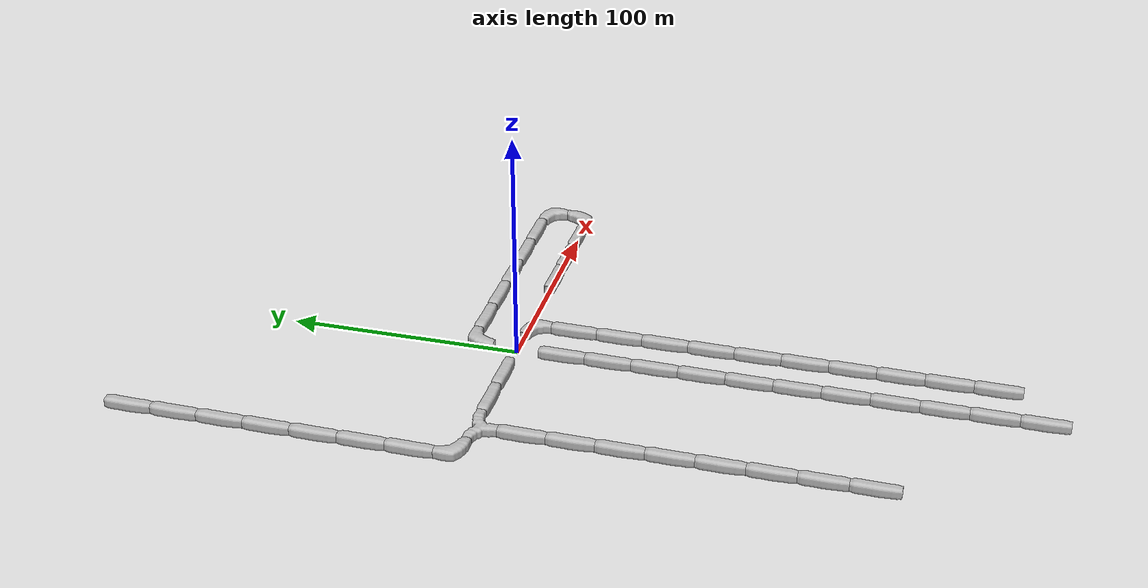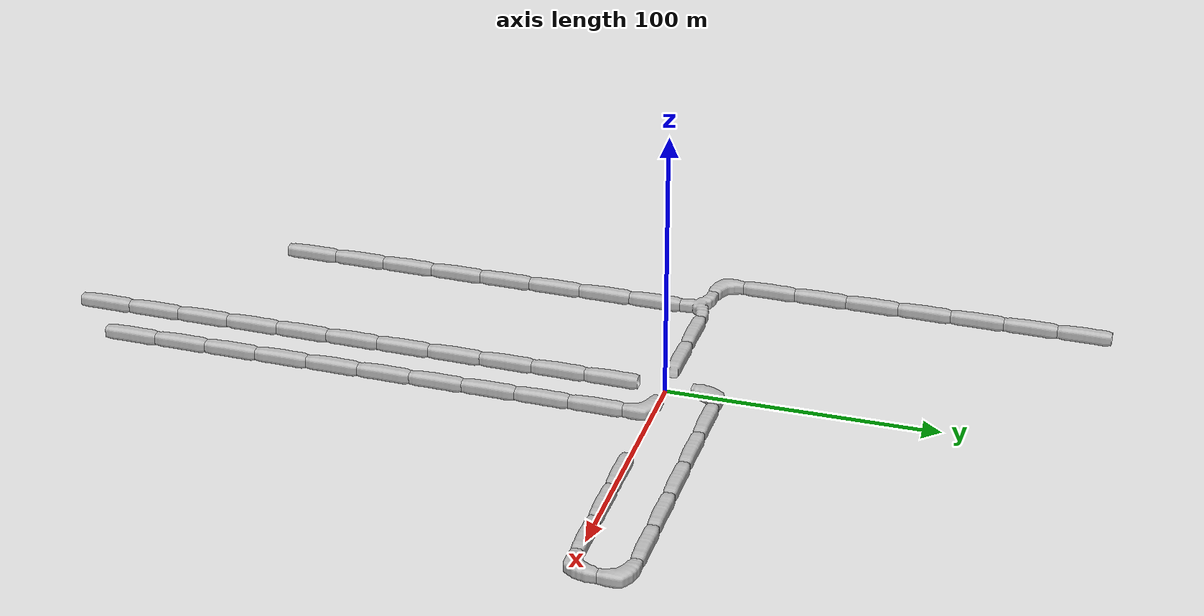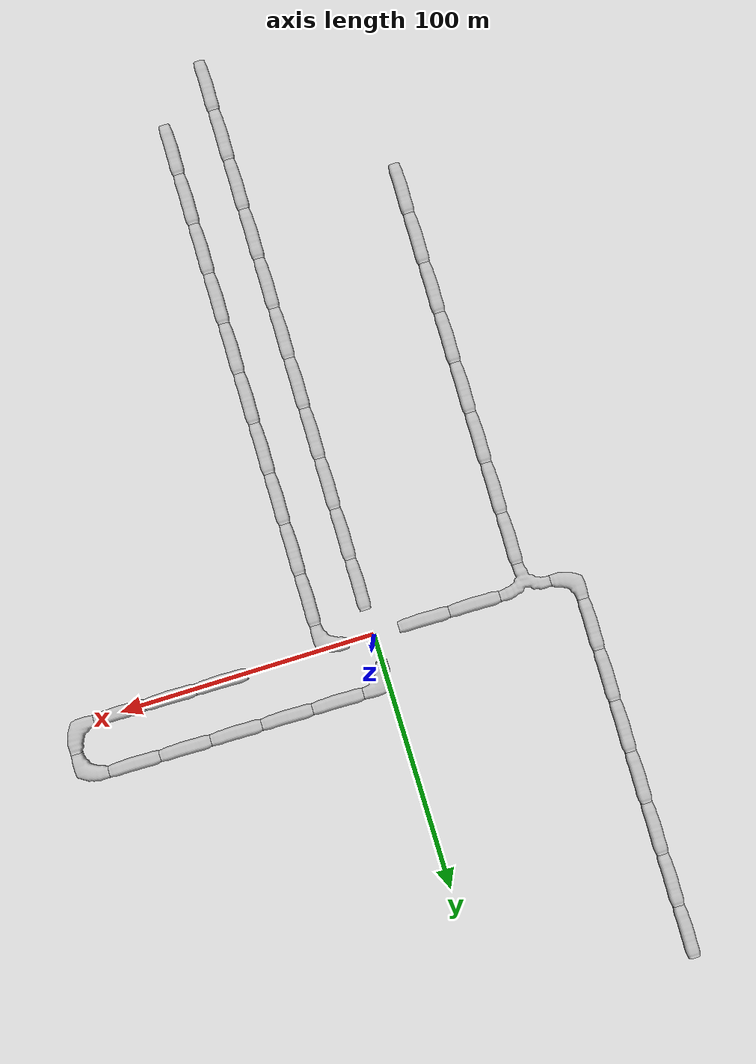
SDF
<sdf version="1.6">
 <world name="cave_1000_2">
  <include>
   <static>true</static>
   <name>cave_1_0</name>
   <pose>20 0 0 0 0 3.141592653589793</pose>
   <uri>model://cave_L_20m</uri>
  </include>
  <include>
   <static>true</static>
   <name>cave_1_-1</name>
   <pose>20 -20 0 0 0 0.0</pose>
   <uri>model://cave_straight_20m</uri>
  </include>
  <include>
   <static>true</static>
   <name>cave_1_-2</name>
   <pose>20 -40 0 0 0 0.0</pose>
   <uri>model://cave_straight_20m</uri>
  </include>
  <include>
   <static>true</static>
   <name>cave_1_-3</name>
   <pose>20 -60 0 0 0 0.0</pose>
   <uri>model://cave_straight_20m</uri>
  </include>
  <include>
   <static>true</static>
   <name>cave_1_-4</name>
   <pose>20 -80 0 0 0 0.0</pose>
   <uri>model://cave_straight_20m</uri>
  </include>
  <include>
   <static>true</static>
   <name>cave_1_-5</name>
   <pose>20 -100 0 0 0 0.0</pose>
   <uri>model://cave_straight_20m</uri>
  </include>
  <include>
   <static>true</static>
   <name>cave_1_-6</name>
   <pose>20 -120 0 0 0 0.0</pose>
   <uri>model://cave_straight_20m</uri>
  </include>
  <include>
   <static>true</static>
   <name>cave_1_-7</name>
   <pose>20 -140 0 0 0 0.0</pose>
   <uri>model://cave_straight_20m</uri>
  </include>
  <include>
   <static>true</static>
   <name>cave_1_-8</name>
   <pose>20 -160 0 0 0 0.0</pose>
   <uri>model://cave_straight_20m</uri>
  </include>
  <include>
   <static>true</static>
   <name>cave_1_-9</name>
   <pose>20 -180 0 0 0 0.0</pose>
   <uri>model://cave_straight_20m</uri>
  </include>
  <include>
   <static>true</static>
   <name>cave_1_-10</name>
   <pose>20 -200 0 0 0 0.0</pose>
   <uri>model://cave_straight_20m</uri>
  </include>
  <include>
   <static>true</static>
   <name>cave_0_-1</name>
   <pose>0 -20 0 0 0 0.0</pose>
   <uri>model://cave_straight_20m</uri>
  </include>
  <include>
   <static>true</static>
   <name>cave_0_-2</name>
   <pose>0 -40 0 0 0 0.0</pose>
   <uri>model://cave_straight_20m</uri>
  </include>
  <include>
   <static>true</static>
   <name>cave_0_-3</name>
   <pose>0 -60 0 0 0 0.0</pose>
   <uri>model://cave_straight_20m</uri>
  </include>
  <include>
   <static>true</static>
   <name>cave_0_-4</name>
   <pose>0 -80 0 0 0 0.0</pose>
   <uri>model://cave_straight_20m</uri>
  </include>
  <include>
   <static>true</static>
   <name>cave_0_-5</name>
   <pose>0 -100 0 0 0 0.0</pose>
   <uri>model://cave_straight_20m</uri>
  </include>
  <include>
   <static>true</static>
   <name>cave_0_-6</name>
   <pose>0 -120 0 0 0 0.0</pose>
   <uri>model://cave_straight_20m</uri>
  </include>
  <include>
   <static>true</static>
   <name>cave_0_-7</name>
   <pose>0 -140 0 0 0 0.0</pose>
   <uri>model://cave_straight_20m</uri>
  </include>
  <include>
   <static>true</static>
   <name>cave_0_-8</name>
   <pose>0 -160 0 0 0 0.0</pose>
   <uri>model://cave_straight_20m</uri>
  </include>
  <include>
   <static>true</static>
   <name>cave_0_-9</name>
   <pose>0 -180 0 0 0 0.0</pose>
   <uri>model://cave_straight_20m</uri>
  </include>
  <include>
   <static>true</static>
   <name>cave_0_-10</name>
   <pose>0 -200 0 0 0 0.0</pose>
   <uri>model://cave_straight_20m</uri>
  </include>
  <include>
   <static>true</static>
   <name>cave_0_-11</name>
   <pose>0 -220 0 0 0 0.0</pose>
   <uri>model://cave_straight_20m</uri>
  </include>
  <include>
   <static>true</static>
   <name>cave_-1_0</name>
   <pose>-20 0 0 0 0 1.5707963267948966</pose>
   <uri>model://cave_straight_20m</uri>
  </include>
  <include>
   <static>true</static>
   <name>cave_-2_0</name>
   <pose>-40 0 0 0 0 1.5707963267948966</pose>
   <uri>model://cave_straight_20m</uri>
  </include>
  <include>
   <static>true</static>
   <name>cave_-3_0</name>
   <pose>-60 0 0 0 0 3.141592653589793</pose>
   <uri>model://cave_3way_20m</uri>
  </include>
  <include>
   <static>true</static>
   <name>cave_-3_-1</name>
   <pose>-60 -20 0 0 0 0.0</pose>
   <uri>model://cave_straight_20m</uri>
  </include>
  <include>
   <static>true</static>
   <name>cave_-3_-2</name>
   <pose>-60 -40 0 0 0 0.0</pose>
   <uri>model://cave_straight_20m</uri>
  </include>
  <include>
   <static>true</static>
   <name>cave_-3_-3</name>
   <pose>-60 -60 0 0 0 0.0</pose>
   <uri>model://cave_straight_20m</uri>
  </include>
  <include>
   <static>true</static>
   <name>cave_-3_-4</name>
   <pose>-60 -80 0 0 0 0.0</pose>
   <uri>model://cave_straight_20m</uri>
  </include>
  <include>
   <static>true</static>
   <name>cave_-3_-5</name>
   <pose>-60 -100 0 0 0 0.0</pose>
   <uri>model://cave_straight_20m</uri>
  </include>
  <include>
   <static>true</static>
   <name>cave_-3_-6</name>
   <pose>-60 -120 0 0 0 0.0</pose>
   <uri>model://cave_straight_20m</uri>
  </include>
  <include>
   <static>true</static>
   <name>cave_-3_-7</name>
   <pose>-60 -140 0 0 0 0.0</pose>
   <uri>model://cave_straight_20m</uri>
  </include>
  <include>
   <static>true</static>
   <name>cave_-3_-8</name>
   <pose>-60 -160 0 0 0 0.0</pose>
   <uri>model://cave_straight_20m</uri>
  </include>
  <include>
   <static>true</static>
   <name>cave_-4_0</name>
   <pose>-80 0 0 0 0 0.0</pose>
   <uri>model://cave_L_20m</uri>
  </include>
  <include>
   <static>true</static>
   <name>cave_-4_1</name>
   <pose>-80 20 0 0 0 0.0</pose>
   <uri>model://cave_straight_20m</uri>
  </include>
  <include>
   <static>true</static>
   <name>cave_-4_2</name>
   <pose>-80 40 0 0 0 0.0</pose>
   <uri>model://cave_straight_20m</uri>
  </include>
  <include>
   <static>true</static>
   <name>cave_-4_3</name>
   <pose>-80 60 0 0 0 0.0</pose>
   <uri>model://cave_straight_20m</uri>
  </include>
  <include>
   <static>true</static>
   <name>cave_-4_4</name>
   <pose>-80 80 0 0 0 0.0</pose>
   <uri>model://cave_straight_20m</uri>
  </include>
  <include>
   <static>true</static>
   <name>cave_-4_5</name>
   <pose>-80 100 0 0 0 0.0</pose>
   <uri>model://cave_straight_20m</uri>
  </include>
  <include>
   <static>true</static>
   <name>cave_-4_6</name>
   <pose>-80 120 0 0 0 0.0</pose>
   <uri>model://cave_straight_20m</uri>
  </include>
  <include>
   <static>true</static>
   <name>cave_-4_7</name>
   <pose>-80 140 0 0 0 0.0</pose>
   <uri>model://cave_straight_20m</uri>
  </include>
  <include>
   <static>true</static>
   <name>cave_0_1</name>
   <pose>0 20 0 0 0 -1.5707963267948966</pose>
   <uri>model://cave_L_20m</uri>
  </include>
  <include>
   <static>true</static>
   <name>cave_1_1</name>
   <pose>20 20 0 0 0 1.5707963267948966</pose>
   <uri>model://cave_straight_20m</uri>
  </include>
  <include>
   <static>true</static>
   <name>cave_2_1</name>
   <pose>40 20 0 0 0 1.5707963267948966</pose>
   <uri>model://cave_straight_20m</uri>
  </include>
  <include>
   <static>true</static>
   <name>cave_3_1</name>
   <pose>60 20 0 0 0 1.5707963267948966</pose>
   <uri>model://cave_straight_20m</uri>
  </include>
  <include>
   <static>true</static>
   <name>cave_4_1</name>
   <pose>80 20 0 0 0 1.5707963267948966</pose>
   <uri>model://cave_straight_20m</uri>
  </include>
  <include>
   <static>true</static>
   <name>cave_5_1</name>
   <pose>100 20 0 0 0 1.5707963267948966</pose>
   <uri>model://cave_straight_20m</uri>
  </include>
  <include>
   <static>true</static>
   <name>cave_6_1</name>
   <pose>120 20 0 0 0 3.141592653589793</pose>
   <uri>model://cave_L_20m</uri>
  </include>
  <include>
   <static>true</static>
   <name>cave_6_0</name>
   <pose>120 0 0 0 0 1.5707963267948966</pose>
   <uri>model://cave_L_20m</uri>
  </include>
  <include>
   <static>true</static>
   <name>cave_5_0</name>
   <pose>100 0 0 0 0 1.5707963267948966</pose>
   <uri>model://cave_straight_20m</uri>
  </include>
  <include>
   <static>true</static>
   <name>cave_4_0</name>
   <pose>80 0 0 0 0 1.5707963267948966</pose>
   <uri>model://cave_straight_20m</uri>
  </include>
  <include>
   <static>true</static>
   <name>cave_3_0</name>
   <pose>60 0 0 0 0 1.5707963267948966</pose>
   <uri>model://cave_straight_20m</uri>
  </include>
 </world>
</sdf>

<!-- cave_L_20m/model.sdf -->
<sdf version="1.6">
  <model name="cave_L_20m">
    <static>true</static>
    <link name="base">
      <pose>0 0 0 0 0 0</pose>
      <collision name="base_collision">
        <pose>0 0 0 0 0 0</pose>
        <geometry>
          <mesh>
            <uri>model://cave_L_20m/meshes/cave_L_20m.dae</uri>
          </mesh>
        </geometry>
        <surface>
          <contact>
             <collide_bitmask>0xffff</collide_bitmask>
          </contact>
          <friction>
            <ode>
              <mu>100</mu>
              <mu2>50</mu2>
            </ode>
          </friction>
        </surface>
      </collision>
      <visual name="base_visual">
        <pose>0 0 0 0 0 0</pose>
        <cast_shadows>false</cast_shadows>
        <geometry>
          <mesh>
            <uri>model://cave_L_20m/meshes/cave_L_20m.dae</uri>
          </mesh>
        </geometry>
      </visual>
    </link>
  </model>
</sdf>

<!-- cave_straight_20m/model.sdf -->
<sdf version="1.6">
  <model name="cave_straight_20m">
    <static>true</static>
    <link name="base">
      <pose>0 0 0 0 0 0</pose>
      <collision name="base_collision">
        <pose>0 0 0 0 0 0</pose>
        <geometry>
          <mesh>
            <uri>model://cave_straight_20m/meshes/cave_straight_20m.dae</uri>
          </mesh>
        </geometry>
        <surface>
          <contact>
             <collide_bitmask>0xffff</collide_bitmask>
          </contact>
          <friction>
            <ode>
              <mu>100</mu>
              <mu2>50</mu2>
            </ode>
          </friction>
        </surface>
      </collision>
      <visual name="base_visual">
        <pose>0 0 0 0 0 0</pose>
        <cast_shadows>false</cast_shadows>
        <geometry>
          <mesh>
            <uri>model://cave_straight_20m/meshes/cave_straight_20m.dae</uri>
          </mesh>
        </geometry>
      </visual>
    </link>
  </model>
</sdf>

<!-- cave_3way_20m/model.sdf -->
<sdf version="1.6">
  <model name="cave_3way_20m">
    <static>true</static>
    <link name="base">
      <pose>0 0 0 0 0 0</pose>
      <collision name="base_collision">
        <pose>0 0 0 0 0 0</pose>
        <geometry>
          <mesh>
            <uri>model://cave_3way_20m/meshes/cave_3way_20m.dae</uri>
          </mesh>
        </geometry>
        <surface>
          <contact>
             <collide_bitmask>0xffff</collide_bitmask>
          </contact>
          <friction>
            <ode>
              <mu>100</mu>
              <mu2>50</mu2>
            </ode>
          </friction>
        </surface>
      </collision>
      <visual name="base_visual">
        <cast_shadows>false</cast_shadows>
        <pose>0 0 0 0 0 0</pose>
        <geometry>
          <mesh>
            <uri>model://cave_3way_20m/meshes/cave_3way_20m.dae</uri>
          </mesh>
        </geometry>
      </visual>
    </link>
  </model>
</sdf>
